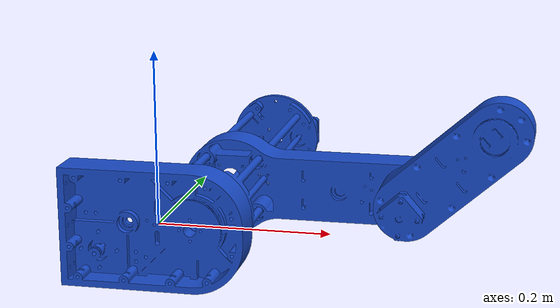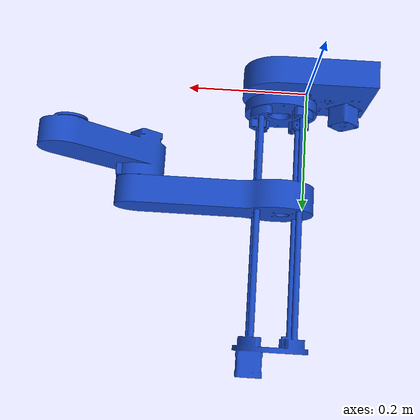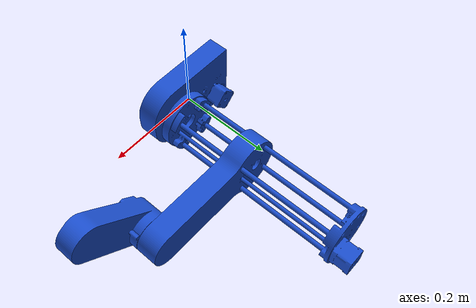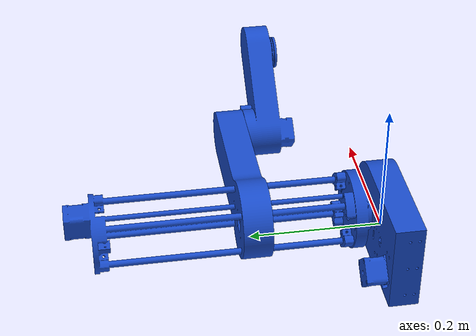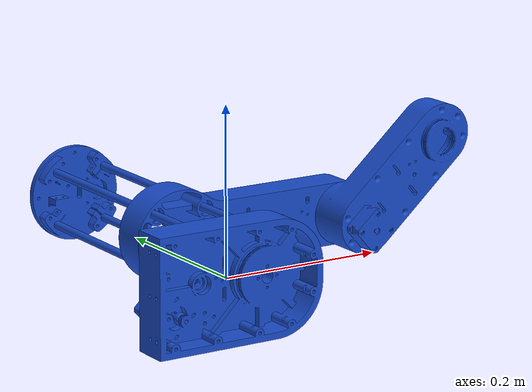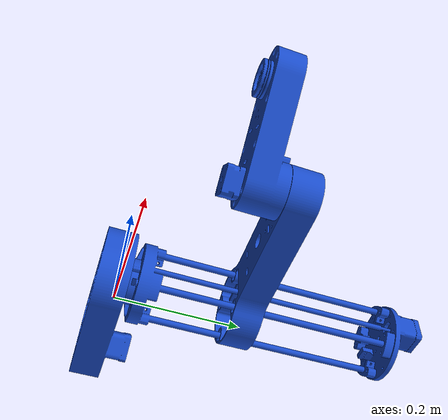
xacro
<?xml version="1.0"?>
<robot name="atom_scara" xmlns:xacro="http://www.ros.org/wiki/xacro">

    <material name="atom_blue">
        <color rgba="0.1 0.3 0.8 1.0"/>
    </material>

    <link name="world"/>

    <link name="base_link">
        <visual>
            <origin xyz="0 0 0" rpy="0 0 0"/>
            <geometry>
                <mesh filename="package://atom_description/meshes/base.stl" scale="0.001 0.001 0.001"/>
            </geometry>
            <material name="atom_blue"/>
        </visual>
    </link>

    <joint name="fixed_base" type="fixed">
        <parent link="world"/>
        <child link="base_link"/>
        <origin xyz="0 0 0" rpy="0 0 0"/>
    </joint>

    <link name="z_axis_link">
        <visual>
            <origin xyz="-0.04 0 0" rpy="0 0 0"/>
            <geometry>
                <mesh filename="package://atom_description/meshes/z_axis.stl" scale="0.001 0.001 0.001"/>
            </geometry>
            <material name="atom_blue"/>
        </visual>
    </link>

    <joint name="joint_base_to_link1" type="revolute">
        <parent link="base_link"/>
        <child link="z_axis_link"/>

        <origin xyz="0.04 0 0" rpy="0 0 0"/>

        <axis xyz="0 1 0"/>

        <limit lower="-2.0" upper="2.0" effort="50.0" velocity="3.14"/>
    </joint>

    <link name="arm1_link">
        <visual>
            <origin xyz="-0.04 0 0" rpy="0 0 0"/>
            <geometry>
                <mesh filename="package://atom_description/meshes/arm1.stl" scale="0.001 0.001 0.001"/>
            </geometry>
            <material name="atom_blue"/>
        </visual>
    </link>

    <joint name="joint_z_axis_arm1" type="prismatic">
        <parent link="z_axis_link"/>
        <child link="arm1_link"/>

        <origin xyz="0.0 0.0 0.0" rpy="0 0 0"/>

        <axis xyz="0 1 0"/>

        <limit lower="-0.1" upper="0.20" effort="50.0" velocity="0.5"/>
    </joint>

    <link name="arm2_link">
        <visual>
            <origin xyz="-0.26 0 0" rpy="0 0 0"/>
            <geometry>
                <mesh filename="package://atom_description/meshes/arm2.stl" scale="0.001 0.001 0.001"/>
            </geometry>
            <material name="atom_blue"/>
        </visual>
    </link>

    <joint name="joint_arm1_link_arm2_link" type="revolute">
        <parent link="arm1_link"/>
        <child link="arm2_link"/>

        <origin xyz="0.22 0 0" rpy="0 0 0"/>

        <axis xyz="0 1 0"/>

        <limit lower="-2.0" upper="4.0" effort="50.0" velocity="3.14"/>
    </joint>

</robot>
